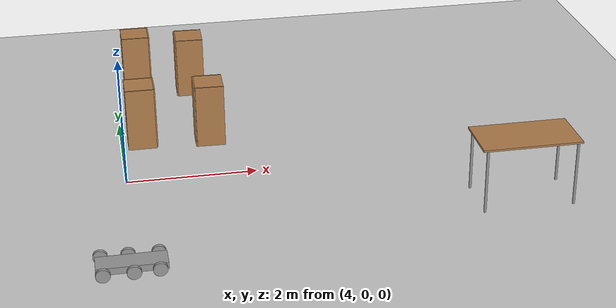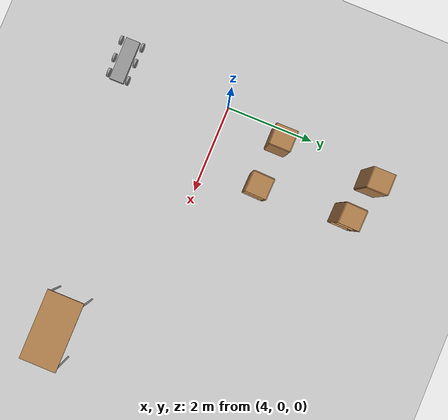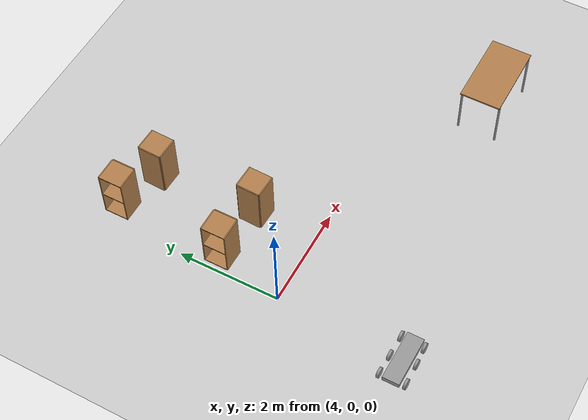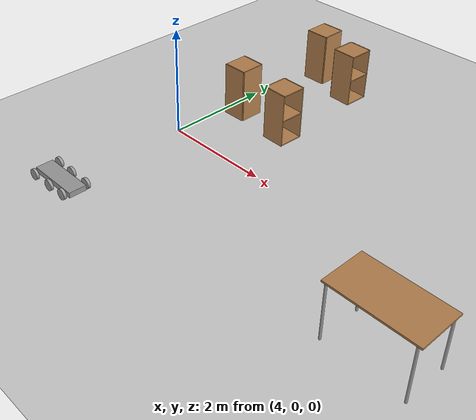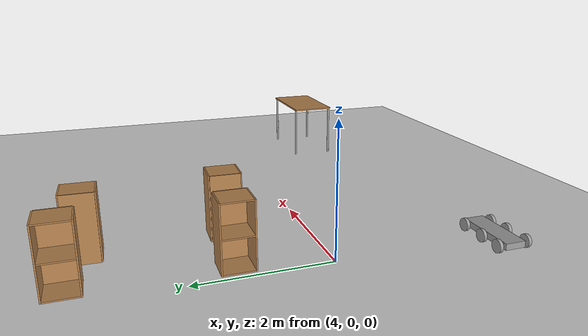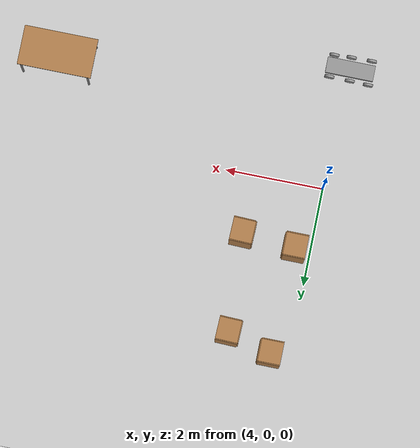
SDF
<sdf version="1.6">
 <world name="default">
  <model name="ground_plane">
   <static>1</static>
   <link name="link">
    <collision name="collision">
     <geometry><plane><normal>0 0 1</normal><size>100 100</size></plane></geometry>
     <surface><friction><ode><mu>100</mu><mu2>50</mu2></ode></friction></surface>
    </collision>
    <visual name="visual">
     <cast_shadows>0</cast_shadows>
     <geometry><plane><normal>0 0 1</normal><size>100 100</size></plane></geometry>
     <material>
      <script><uri>file://media/materials/scripts/gazebo.material</uri><name>Gazebo/Grey</name></script>
     </material>
    </visual>
   </link>
  </model>
  <model name="cabinet_1">
   <static>1</static>
   <link name="cabinet_bottom_plate">
    <inertial>
     <pose>0 0 -1 0 -0 0</pose>
     <inertia><ixx>2.05</ixx><ixy>0</ixy><ixz>0</ixz><iyy>2.05</iyy><iyz>0</iyz><izz>2.05</izz></inertia>
     <mass>25</mass>
    </inertial>
    <collision name="cabinet_bottom_plate_geom">
     <pose>0 0 0.01 0 -0 0</pose>
     <geometry><box><size>0.45 0.45 0.02</size></box></geometry>
    </collision>
    <visual name="cabinet_bottom_plate_geom_visual">
     <pose>0 0 0.01 0 -0 0</pose>
     <geometry><box><size>0.45 0.45 0.02</size></box></geometry>
     <material>
      <script><uri>file://media/materials/scripts/gazebo.material</uri><name>Gazebo/Wood</name></script>
     </material>
    </visual>
    <collision name="cabinet_bottom_plate_geom_cabinet_back_plate">
     <pose>0.235 0 0.51 0 -0 0</pose>
     <geometry><box><size>0.02 0.45 1.02</size></box></geometry>
    </collision>
    <visual name="cabinet_bottom_plate_geom_cabinet_back_plate_visual">
     <pose>0.235 0 0.51 0 -0 0</pose>
     <geometry><box><size>0.02 0.45 1.02</size></box></geometry>
     <material>
      <script><uri>file://media/materials/scripts/gazebo.material</uri><name>Gazebo/Wood</name></script>
     </material>
    </visual>
    <collision name="cabinet_bottom_plate_geom_cabinet_left_plate">
     <pose>0 0.235 0.51 0 -0 0</pose>
     <geometry><box><size>0.45 0.02 1.02</size></box></geometry>
    </collision>
    <visual name="cabinet_bottom_plate_geom_cabinet_left_plate_visual">
     <pose>0 0.235 0.51 0 -0 0</pose>
     <geometry><box><size>0.45 0.02 1.02</size></box></geometry>
     <material>
      <script><uri>file://media/materials/scripts/gazebo.material</uri><name>Gazebo/Wood</name></script>
     </material>
    </visual>
    <collision name="cabinet_bottom_plate_geom_cabinet_middle_plate">
     <pose>0 0 0.51 0 -0 0</pose>
     <geometry><box><size>0.45 0.45 0.02</size></box></geometry>
    </collision>
    <visual name="cabinet_bottom_plate_geom_cabinet_middle_plate_visual">
     <pose>0 0 0.51 0 -0 0</pose>
     <geometry><box><size>0.45 0.45 0.02</size></box></geometry>
     <material>
      <script><uri>file://media/materials/scripts/gazebo.material</uri><name>Gazebo/Wood</name></script>
     </material>
    </visual>
    <collision name="cabinet_bottom_plate_geom_cabinet_right_plate">
     <pose>0 -0.235 0.51 0 -0 0</pose>
     <geometry><box><size>0.45 0.02 1.02</size></box></geometry>
    </collision>
    <visual name="cabinet_bottom_plate_geom_cabinet_right_plate_visual">
     <pose>0 -0.235 0.51 0 -0 0</pose>
     <geometry><box><size>0.45 0.02 1.02</size></box></geometry>
     <material>
      <script><uri>file://media/materials/scripts/gazebo.material</uri><name>Gazebo/Wood</name></script>
     </material>
    </visual>
    <collision name="cabinet_bottom_plate_geom_cabinet_top_plate">
     <pose>0 0 1.01 0 -0 0</pose>
     <geometry><box><size>0.45 0.45 0.02</size></box></geometry>
    </collision>
    <visual name="cabinet_bottom_plate_geom_cabinet_top_plate_visual">
     <pose>0 0 1.01 0 -0 0</pose>
     <geometry><box><size>0.45 0.45 0.02</size></box></geometry>
     <material>
      <script><uri>file://media/materials/scripts/gazebo.material</uri><name>Gazebo/Wood</name></script>
     </material>
    </visual>
   </link>
   <pose>4.39562 3.49519 0 0 -0 0</pose>
  </model>
  <model name="cabinet_2">
   <static>1</static>
   <link name="cabinet_bottom_plate">
    <inertial>
     <pose>0 0 -1 0 -0 0</pose>
     <inertia><ixx>2.05</ixx><ixy>0</ixy><ixz>0</ixz><iyy>2.05</iyy><iyz>0</iyz><izz>2.05</izz></inertia>
     <mass>25</mass>
    </inertial>
    <collision name="cabinet_bottom_plate_geom">
     <pose>0 0 0.01 0 -0 0</pose>
     <geometry><box><size>0.45 0.45 0.02</size></box></geometry>
    </collision>
    <visual name="cabinet_bottom_plate_geom_visual">
     <pose>0 0 0.01 0 -0 0</pose>
     <geometry><box><size>0.45 0.45 0.02</size></box></geometry>
     <material>
      <script><uri>file://media/materials/scripts/gazebo.material</uri><name>Gazebo/Wood</name></script>
     </material>
    </visual>
    <collision name="cabinet_bottom_plate_geom_cabinet_back_plate">
     <pose>0.235 0 0.51 0 -0 0</pose>
     <geometry><box><size>0.02 0.45 1.02</size></box></geometry>
    </collision>
    <visual name="cabinet_bottom_plate_geom_cabinet_back_plate_visual">
     <pose>0.235 0 0.51 0 -0 0</pose>
     <geometry><box><size>0.02 0.45 1.02</size></box></geometry>
     <material>
      <script><uri>file://media/materials/scripts/gazebo.material</uri><name>Gazebo/Wood</name></script>
     </material>
    </visual>
    <collision name="cabinet_bottom_plate_geom_cabinet_left_plate">
     <pose>0 0.235 0.51 0 -0 0</pose>
     <geometry><box><size>0.45 0.02 1.02</size></box></geometry>
    </collision>
    <visual name="cabinet_bottom_plate_geom_cabinet_left_plate_visual">
     <pose>0 0.235 0.51 0 -0 0</pose>
     <geometry><box><size>0.45 0.02 1.02</size></box></geometry>
     <material>
      <script><uri>file://media/materials/scripts/gazebo.material</uri><name>Gazebo/Wood</name></script>
     </material>
    </visual>
    <collision name="cabinet_bottom_plate_geom_cabinet_middle_plate">
     <pose>0 0 0.51 0 -0 0</pose>
     <geometry><box><size>0.45 0.45 0.02</size></box></geometry>
    </collision>
    <visual name="cabinet_bottom_plate_geom_cabinet_middle_plate_visual">
     <pose>0 0 0.51 0 -0 0</pose>
     <geometry><box><size>0.45 0.45 0.02</size></box></geometry>
     <material>
      <script><uri>file://media/materials/scripts/gazebo.material</uri><name>Gazebo/Wood</name></script>
     </material>
    </visual>
    <collision name="cabinet_bottom_plate_geom_cabinet_right_plate">
     <pose>0 -0.235 0.51 0 -0 0</pose>
     <geometry><box><size>0.45 0.02 1.02</size></box></geometry>
    </collision>
    <visual name="cabinet_bottom_plate_geom_cabinet_right_plate_visual">
     <pose>0 -0.235 0.51 0 -0 0</pose>
     <geometry><box><size>0.45 0.02 1.02</size></box></geometry>
     <material>
      <script><uri>file://media/materials/scripts/gazebo.material</uri><name>Gazebo/Wood</name></script>
     </material>
    </visual>
    <collision name="cabinet_bottom_plate_geom_cabinet_top_plate">
     <pose>0 0 1.01 0 -0 0</pose>
     <geometry><box><size>0.45 0.45 0.02</size></box></geometry>
    </collision>
    <visual name="cabinet_bottom_plate_geom_cabinet_top_plate_visual">
     <pose>0 0 1.01 0 -0 0</pose>
     <geometry><box><size>0.45 0.45 0.02</size></box></geometry>
     <material>
      <script><uri>file://media/materials/scripts/gazebo.material</uri><name>Gazebo/Wood</name></script>
     </material>
    </visual>
   </link>
   <pose>4.32245 1.31746 0 0 -0 0</pose>
  </model>
  <model name="cabinet_3">
   <static>1</static>
   <link name="cabinet_bottom_plate">
    <inertial>
     <pose>0 0 -1 0 -0 0</pose>
     <inertia><ixx>2.05</ixx><ixy>0</ixy><ixz>0</ixz><iyy>2.05</iyy><iyz>0</iyz><izz>2.05</izz></inertia>
     <mass>25</mass>
    </inertial>
    <collision name="cabinet_bottom_plate_geom">
     <pose>0 0 0.01 0 -0 0</pose>
     <geometry><box><size>0.45 0.45 0.02</size></box></geometry>
    </collision>
    <visual name="cabinet_bottom_plate_geom_visual">
     <pose>0 0 0.01 0 -0 0</pose>
     <geometry><box><size>0.45 0.45 0.02</size></box></geometry>
     <material>
      <script><uri>file://media/materials/scripts/gazebo.material</uri><name>Gazebo/Wood</name></script>
     </material>
    </visual>
    <collision name="cabinet_bottom_plate_geom_cabinet_back_plate">
     <pose>0.235 0 0.51 0 -0 0</pose>
     <geometry><box><size>0.02 0.45 1.02</size></box></geometry>
    </collision>
    <visual name="cabinet_bottom_plate_geom_cabinet_back_plate_visual">
     <pose>0.235 0 0.51 0 -0 0</pose>
     <geometry><box><size>0.02 0.45 1.02</size></box></geometry>
     <material>
      <script><uri>file://media/materials/scripts/gazebo.material</uri><name>Gazebo/Wood</name></script>
     </material>
    </visual>
    <collision name="cabinet_bottom_plate_geom_cabinet_left_plate">
     <pose>0 0.235 0.51 0 -0 0</pose>
     <geometry><box><size>0.45 0.02 1.02</size></box></geometry>
    </collision>
    <visual name="cabinet_bottom_plate_geom_cabinet_left_plate_visual">
     <pose>0 0.235 0.51 0 -0 0</pose>
     <geometry><box><size>0.45 0.02 1.02</size></box></geometry>
     <material>
      <script><uri>file://media/materials/scripts/gazebo.material</uri><name>Gazebo/Wood</name></script>
     </material>
    </visual>
    <collision name="cabinet_bottom_plate_geom_cabinet_middle_plate">
     <pose>0 0 0.51 0 -0 0</pose>
     <geometry><box><size>0.45 0.45 0.02</size></box></geometry>
    </collision>
    <visual name="cabinet_bottom_plate_geom_cabinet_middle_plate_visual">
     <pose>0 0 0.51 0 -0 0</pose>
     <geometry><box><size>0.45 0.45 0.02</size></box></geometry>
     <material>
      <script><uri>file://media/materials/scripts/gazebo.material</uri><name>Gazebo/Wood</name></script>
     </material>
    </visual>
    <collision name="cabinet_bottom_plate_geom_cabinet_right_plate">
     <pose>0 -0.235 0.51 0 -0 0</pose>
     <geometry><box><size>0.45 0.02 1.02</size></box></geometry>
    </collision>
    <visual name="cabinet_bottom_plate_geom_cabinet_right_plate_visual">
     <pose>0 -0.235 0.51 0 -0 0</pose>
     <geometry><box><size>0.45 0.02 1.02</size></box></geometry>
     <material>
      <script><uri>file://media/materials/scripts/gazebo.material</uri><name>Gazebo/Wood</name></script>
     </material>
    </visual>
    <collision name="cabinet_bottom_plate_geom_cabinet_top_plate">
     <pose>0 0 1.01 0 -0 0</pose>
     <geometry><box><size>0.45 0.45 0.02</size></box></geometry>
    </collision>
    <visual name="cabinet_bottom_plate_geom_cabinet_top_plate_visual">
     <pose>0 0 1.01 0 -0 0</pose>
     <geometry><box><size>0.45 0.45 0.02</size></box></geometry>
     <material>
      <script><uri>file://media/materials/scripts/gazebo.material</uri><name>Gazebo/Wood</name></script>
     </material>
    </visual>
   </link>
   <pose>5.41953 1.23451 0 0 -0 3.1124</pose>
  </model>
  <model name="cabinet_3_clone">
   <static>1</static>
   <link name="cabinet_bottom_plate">
    <inertial>
     <pose>0 0 -1 0 -0 0</pose>
     <inertia><ixx>2.05</ixx><ixy>0</ixy><ixz>0</ixz><iyy>2.05</iyy><iyz>0</iyz><izz>2.05</izz></inertia>
     <mass>25</mass>
    </inertial>
    <collision name="cabinet_bottom_plate_geom">
     <pose>0 0 0.01 0 -0 0</pose>
     <geometry><box><size>0.45 0.45 0.02</size></box></geometry>
    </collision>
    <visual name="cabinet_bottom_plate_geom_visual">
     <pose>0 0 0.01 0 -0 0</pose>
     <geometry><box><size>0.45 0.45 0.02</size></box></geometry>
     <material>
      <script><uri>file://media/materials/scripts/gazebo.material</uri><name>Gazebo/Wood</name></script>
     </material>
    </visual>
    <collision name="cabinet_bottom_plate_geom_cabinet_back_plate">
     <pose>0.235 0 0.51 0 -0 0</pose>
     <geometry><box><size>0.02 0.45 1.02</size></box></geometry>
    </collision>
    <visual name="cabinet_bottom_plate_geom_cabinet_back_plate_visual">
     <pose>0.235 0 0.51 0 -0 0</pose>
     <geometry><box><size>0.02 0.45 1.02</size></box></geometry>
     <material>
      <script><uri>file://media/materials/scripts/gazebo.material</uri><name>Gazebo/Wood</name></script>
     </material>
    </visual>
    <collision name="cabinet_bottom_plate_geom_cabinet_left_plate">
     <pose>0 0.235 0.51 0 -0 0</pose>
     <geometry><box><size>0.45 0.02 1.02</size></box></geometry>
    </collision>
    <visual name="cabinet_bottom_plate_geom_cabinet_left_plate_visual">
     <pose>0 0.235 0.51 0 -0 0</pose>
     <geometry><box><size>0.45 0.02 1.02</size></box></geometry>
     <material>
      <script><uri>file://media/materials/scripts/gazebo.material</uri><name>Gazebo/Wood</name></script>
     </material>
    </visual>
    <collision name="cabinet_bottom_plate_geom_cabinet_middle_plate">
     <pose>0 0 0.51 0 -0 0</pose>
     <geometry><box><size>0.45 0.45 0.02</size></box></geometry>
    </collision>
    <visual name="cabinet_bottom_plate_geom_cabinet_middle_plate_visual">
     <pose>0 0 0.51 0 -0 0</pose>
     <geometry><box><size>0.45 0.45 0.02</size></box></geometry>
     <material>
      <script><uri>file://media/materials/scripts/gazebo.material</uri><name>Gazebo/Wood</name></script>
     </material>
    </visual>
    <collision name="cabinet_bottom_plate_geom_cabinet_right_plate">
     <pose>0 -0.235 0.51 0 -0 0</pose>
     <geometry><box><size>0.45 0.02 1.02</size></box></geometry>
    </collision>
    <visual name="cabinet_bottom_plate_geom_cabinet_right_plate_visual">
     <pose>0 -0.235 0.51 0 -0 0</pose>
     <geometry><box><size>0.45 0.02 1.02</size></box></geometry>
     <material>
      <script><uri>file://media/materials/scripts/gazebo.material</uri><name>Gazebo/Wood</name></script>
     </material>
    </visual>
    <collision name="cabinet_bottom_plate_geom_cabinet_top_plate">
     <pose>0 0 1.01 0 -0 0</pose>
     <geometry><box><size>0.45 0.45 0.02</size></box></geometry>
    </collision>
    <visual name="cabinet_bottom_plate_geom_cabinet_top_plate_visual">
     <pose>0 0 1.01 0 -0 0</pose>
     <geometry><box><size>0.45 0.45 0.02</size></box></geometry>
     <material>
      <script><uri>file://media/materials/scripts/gazebo.material</uri><name>Gazebo/Wood</name></script>
     </material>
    </visual>
   </link>
   <pose>5.30186 3.23149 0 0 -0 3.1124</pose>
  </model>
  <model name="table_1">
   <static>1</static>
   <link name="link">
    <collision name="surface">
     <pose>0 0 1 0 -0 0</pose>
     <geometry><box><size>1.5 0.8 0.03</size></box></geometry>
     <surface><friction><ode><mu>0.6</mu><mu2>0.6</mu2></ode></friction></surface>
    </collision>
    <visual name="visual1">
     <pose>0 0 1 0 -0 0</pose>
     <geometry><box><size>1.5 0.8 0.03</size></box></geometry>
     <material>
      <script><uri>file://media/materials/scripts/gazebo.material</uri><name>Gazebo/Wood</name></script>
     </material>
    </visual>
    <collision name="front_left_leg">
     <pose>0.68 0.38 0.5 0 -0 0</pose>
     <geometry><cylinder><radius>0.02</radius><length>1</length></cylinder></geometry>
    </collision>
    <visual name="front_left_leg">
     <pose>0.68 0.38 0.5 0 -0 0</pose>
     <geometry><cylinder><radius>0.02</radius><length>1</length></cylinder></geometry>
     <material>
      <script><uri>file://media/materials/scripts/gazebo.material</uri><name>Gazebo/Grey</name></script>
     </material>
    </visual>
    <collision name="front_right_leg">
     <pose>0.68 -0.38 0.5 0 -0 0</pose>
     <geometry><cylinder><radius>0.02</radius><length>1</length></cylinder></geometry>
    </collision>
    <visual name="front_right_leg">
     <pose>0.68 -0.38 0.5 0 -0 0</pose>
     <geometry><cylinder><radius>0.02</radius><length>1</length></cylinder></geometry>
     <material>
      <script><uri>file://media/materials/scripts/gazebo.material</uri><name>Gazebo/Grey</name></script>
     </material>
    </visual>
    <collision name="back_right_leg">
     <pose>-0.68 -0.38 0.5 0 -0 0</pose>
     <geometry><cylinder><radius>0.02</radius><length>1</length></cylinder></geometry>
    </collision>
    <visual name="back_right_leg">
     <pose>-0.68 -0.38 0.5 0 -0 0</pose>
     <geometry><cylinder><radius>0.02</radius><length>1</length></cylinder></geometry>
     <material>
      <script><uri>file://media/materials/scripts/gazebo.material</uri><name>Gazebo/Grey</name></script>
     </material>
    </visual>
    <collision name="back_left_leg">
     <pose>-0.68 0.38 0.5 0 -0 0</pose>
     <geometry><cylinder><radius>0.02</radius><length>1</length></cylinder></geometry>
    </collision>
    <visual name="back_left_leg">
     <pose>-0.68 0.38 0.5 0 -0 0</pose>
     <geometry><cylinder><radius>0.02</radius><length>1</length></cylinder></geometry>
     <material>
      <script><uri>file://media/materials/scripts/gazebo.material</uri><name>Gazebo/Grey</name></script>
     </material>
    </visual>
   </link>
   <pose>9.75267 -1.55017 0 0 -0 0</pose>
  </model>
  <model name="robot">
   <link name="link_0">
    <pose>-0 0 0.1 0 -0 0</pose>
    <inertial>
     <mass>4.00076</mass>
     <inertia>
      <ixx>0.0386404</ixx>
      <ixy>0</ixy>
      <ixz>0</ixz>
      <iyy>0.325805</iyy>
      <iyz>0</iyz>
      <izz>0.357777</izz>
     </inertia>
    </inertial>
    <visual name="visual">
     <geometry><box><size>0.983477 0.325421 0.1</size></box></geometry>
     <material>
      <lighting>1</lighting>
      <script><uri>file://media/materials/scripts/gazebo.material</uri><name>Gazebo/Grey</name></script>
      <shader type="pixel"><normal_map>__default__</normal_map></shader>
      <ambient>0.3 0.3 0.3 1</ambient>
      <diffuse>0.7 0.7 0.7 1</diffuse>
      <specular>0.01 0.01 0.01 1</specular>
      <emissive>0 0 0 1</emissive>
     </material>
    </visual>
    <collision name="collision">
     <geometry><box><size>0.983477 0.325421 0.1</size></box></geometry>
     <surface>
      <friction>
       <ode><mu>1</mu><mu2>1</mu2><fdir1>0 0 0</fdir1><slip1>0</slip1><slip2>0</slip2></ode>
       <torsional>
        <coefficient>1</coefficient>
        <patch_radius>0</patch_radius>
        <surface_radius>0</surface_radius>
        <use_patch_radius>1</use_patch_radius>
        <ode><slip>0</slip></ode>
       </torsional>
      </friction>
      <bounce><restitution_coefficient>0</restitution_coefficient><threshold>1e+06</threshold></bounce>
      <contact>
       <collide_without_contact>0</collide_without_contact>
       <collide_without_contact_bitmask>1</collide_without_contact_bitmask>
       <collide_bitmask>1</collide_bitmask>
       <ode>
        <soft_cfm>0</soft_cfm>
        <soft_erp>0.2</soft_erp>
        <kp>1e+13</kp>
        <kd>1</kd>
        <max_vel>0.01</max_vel>
        <min_depth>0</min_depth>
       </ode>
       <bullet>
        <split_impulse>1</split_impulse>
        <split_impulse_penetration_threshold>-0.01</split_impulse_penetration_threshold>
        <soft_cfm>0</soft_cfm>
        <soft_erp>0.2</soft_erp>
        <kp>1e+13</kp>
        <kd>1</kd>
       </bullet>
      </contact>
     </surface>
    </collision>
   </link>
   <link name="link_1">
    <pose>0.387288 0.231079 0.10001 -0.000572 1.5707 1.57013</pose>
    <inertial>
     <mass>1</mass>
     <inertia><ixx>0.145833</ixx><ixy>0</ixy><ixz>0</ixz><iyy>0.145833</iyy><iyz>0</iyz><izz>0.125</izz></inertia>
    </inertial>
    <visual name="visual">
     <geometry><cylinder><radius>0.1</radius><length>0.05</length></cylinder></geometry>
     <material>
      <lighting>1</lighting>
      <script><uri>file://media/materials/scripts/gazebo.material</uri><name>Gazebo/Grey</name></script>
      <shader type="pixel"><normal_map>__default__</normal_map></shader>
      <ambient>0.3 0.3 0.3 1</ambient>
      <diffuse>0.7 0.7 0.7 1</diffuse>
      <specular>0.01 0.01 0.01 1</specular>
      <emissive>0 0 0 1</emissive>
     </material>
    </visual>
    <collision name="collision">
     <geometry><cylinder><radius>0.1</radius><length>0.05</length></cylinder></geometry>
     <surface>
      <friction>
       <ode><mu>1</mu><mu2>1</mu2><fdir1>0 0 0</fdir1><slip1>0</slip1><slip2>0</slip2></ode>
       <torsional>
        <coefficient>1</coefficient>
        <patch_radius>0</patch_radius>
        <surface_radius>0</surface_radius>
        <use_patch_radius>1</use_patch_radius>
        <ode><slip>0</slip></ode>
       </torsional>
      </friction>
      <bounce><restitution_coefficient>0</restitution_coefficient><threshold>1e+06</threshold></bounce>
      <contact>
       <collide_without_contact>0</collide_without_contact>
       <collide_without_contact_bitmask>1</collide_without_contact_bitmask>
       <collide_bitmask>1</collide_bitmask>
       <ode>
        <soft_cfm>0</soft_cfm>
        <soft_erp>0.2</soft_erp>
        <kp>1e+13</kp>
        <kd>1</kd>
        <max_vel>0.01</max_vel>
        <min_depth>0</min_depth>
       </ode>
       <bullet>
        <split_impulse>1</split_impulse>
        <split_impulse_penetration_threshold>-0.01</split_impulse_penetration_threshold>
        <soft_cfm>0</soft_cfm>
        <soft_erp>0.2</soft_erp>
        <kp>1e+13</kp>
        <kd>1</kd>
       </bullet>
      </contact>
     </surface>
    </collision>
   </link>
   <link name="link_1_clone">
    <pose>-0.034946 0.236686 0.10001 -0.000572 1.5707 1.57013</pose>
    <inertial>
     <mass>1</mass>
     <inertia><ixx>0.145833</ixx><ixy>0</ixy><ixz>0</ixz><iyy>0.145833</iyy><iyz>0</iyz><izz>0.125</izz></inertia>
    </inertial>
    <visual name="visual">
     <geometry><cylinder><radius>0.1</radius><length>0.05</length></cylinder></geometry>
     <material>
      <lighting>1</lighting>
      <script><uri>file://media/materials/scripts/gazebo.material</uri><name>Gazebo/Grey</name></script>
      <shader type="pixel"><normal_map>__default__</normal_map></shader>
      <ambient>0.3 0.3 0.3 1</ambient>
      <diffuse>0.7 0.7 0.7 1</diffuse>
      <specular>0.01 0.01 0.01 1</specular>
      <emissive>0 0 0 1</emissive>
     </material>
    </visual>
    <collision name="collision">
     <geometry><cylinder><radius>0.1</radius><length>0.05</length></cylinder></geometry>
     <surface>
      <friction>
       <ode><mu>1</mu><mu2>1</mu2><fdir1>0 0 0</fdir1><slip1>0</slip1><slip2>0</slip2></ode>
       <torsional>
        <coefficient>1</coefficient>
        <patch_radius>0</patch_radius>
        <surface_radius>0</surface_radius>
        <use_patch_radius>1</use_patch_radius>
        <ode><slip>0</slip></ode>
       </torsional>
      </friction>
      <bounce><restitution_coefficient>0</restitution_coefficient><threshold>1e+06</threshold></bounce>
      <contact>
       <collide_without_contact>0</collide_without_contact>
       <collide_without_contact_bitmask>1</collide_without_contact_bitmask>
       <collide_bitmask>1</collide_bitmask>
       <ode>
        <soft_cfm>0</soft_cfm>
        <soft_erp>0.2</soft_erp>
        <kp>1e+13</kp>
        <kd>1</kd>
        <max_vel>0.01</max_vel>
        <min_depth>0</min_depth>
       </ode>
       <bullet>
        <split_impulse>1</split_impulse>
        <split_impulse_penetration_threshold>-0.01</split_impulse_penetration_threshold>
        <soft_cfm>0</soft_cfm>
        <soft_erp>0.2</soft_erp>
        <kp>1e+13</kp>
        <kd>1</kd>
       </bullet>
      </contact>
     </surface>
    </collision>
   </link>
   <link name="link_1_clone_0">
    <pose>-0.414236 0.246471 0.10001 -0.000572 1.5707 1.57013</pose>
    <inertial>
     <mass>1</mass>
     <inertia><ixx>0.145833</ixx><ixy>0</ixy><ixz>0</ixz><iyy>0.145833</iyy><iyz>0</iyz><izz>0.125</izz></inertia>
    </inertial>
    <visual name="visual">
     <geometry><cylinder><radius>0.1</radius><length>0.05</length></cylinder></geometry>
     <material>
      <lighting>1</lighting>
      <script><uri>file://media/materials/scripts/gazebo.material</uri><name>Gazebo/Grey</name></script>
      <shader type="pixel"><normal_map>__default__</normal_map></shader>
      <ambient>0.3 0.3 0.3 1</ambient>
      <diffuse>0.7 0.7 0.7 1</diffuse>
      <specular>0.01 0.01 0.01 1</specular>
      <emissive>0 0 0 1</emissive>
     </material>
    </visual>
    <collision name="collision">
     <geometry><cylinder><radius>0.1</radius><length>0.05</length></cylinder></geometry>
     <surface>
      <friction>
       <ode><mu>1</mu><mu2>1</mu2><fdir1>0 0 0</fdir1><slip1>0</slip1><slip2>0</slip2></ode>
       <torsional>
        <coefficient>1</coefficient>
        <patch_radius>0</patch_radius>
        <surface_radius>0</surface_radius>
        <use_patch_radius>1</use_patch_radius>
        <ode><slip>0</slip></ode>
       </torsional>
      </friction>
      <bounce><restitution_coefficient>0</restitution_coefficient><threshold>1e+06</threshold></bounce>
      <contact>
       <collide_without_contact>0</collide_without_contact>
       <collide_without_contact_bitmask>1</collide_without_contact_bitmask>
       <collide_bitmask>1</collide_bitmask>
       <ode>
        <soft_cfm>0</soft_cfm>
        <soft_erp>0.2</soft_erp>
        <kp>1e+13</kp>
        <kd>1</kd>
        <max_vel>0.01</max_vel>
        <min_depth>0</min_depth>
       </ode>
       <bullet>
        <split_impulse>1</split_impulse>
        <split_impulse_penetration_threshold>-0.01</split_impulse_penetration_threshold>
        <soft_cfm>0</soft_cfm>
        <soft_erp>0.2</soft_erp>
        <kp>1e+13</kp>
        <kd>1</kd>
       </bullet>
      </contact>
     </surface>
    </collision>
   </link>
   <link name="link_1_clone_1">
    <pose>0.018916 -0.242775 0.10001 -0.000572 1.5707 1.57013</pose>
    <inertial>
     <mass>1</mass>
     <inertia><ixx>0.145833</ixx><ixy>0</ixy><ixz>0</ixz><iyy>0.145833</iyy><iyz>0</iyz><izz>0.125</izz></inertia>
    </inertial>
    <visual name="visual">
     <geometry><cylinder><radius>0.1</radius><length>0.05</length></cylinder></geometry>
     <material>
      <lighting>1</lighting>
      <script><uri>file://media/materials/scripts/gazebo.material</uri><name>Gazebo/Grey</name></script>
      <shader type="pixel"><normal_map>__default__</normal_map></shader>
      <ambient>0.3 0.3 0.3 1</ambient>
      <diffuse>0.7 0.7 0.7 1</diffuse>
      <specular>0.01 0.01 0.01 1</specular>
      <emissive>0 0 0 1</emissive>
     </material>
    </visual>
    <collision name="collision">
     <geometry><cylinder><radius>0.1</radius><length>0.05</length></cylinder></geometry>
     <surface>
      <friction>
       <ode><mu>1</mu><mu2>1</mu2><fdir1>0 0 0</fdir1><slip1>0</slip1><slip2>0</slip2></ode>
       <torsional>
        <coefficient>1</coefficient>
        <patch_radius>0</patch_radius>
        <surface_radius>0</surface_radius>
        <use_patch_radius>1</use_patch_radius>
        <ode><slip>0</slip></ode>
       </torsional>
      </friction>
      <bounce><restitution_coefficient>0</restitution_coefficient><threshold>1e+06</threshold></bounce>
      <contact>
       <collide_without_contact>0</collide_without_contact>
       <collide_without_contact_bitmask>1</collide_without_contact_bitmask>
       <collide_bitmask>1</collide_bitmask>
       <ode>
        <soft_cfm>0</soft_cfm>
        <soft_erp>0.2</soft_erp>
        <kp>1e+13</kp>
        <kd>1</kd>
        <max_vel>0.01</max_vel>
        <min_depth>0</min_depth>
       </ode>
       <bullet>
        <split_impulse>1</split_impulse>
        <split_impulse_penetration_threshold>-0.01</split_impulse_penetration_threshold>
        <soft_cfm>0</soft_cfm>
        <soft_erp>0.2</soft_erp>
        <kp>1e+13</kp>
        <kd>1</kd>
       </bullet>
      </contact>
     </surface>
    </collision>
   </link>
   <link name="link_1_clone_2">
    <pose>-0.397128 -0.249762 0.10001 -0.000572 1.5707 1.57013</pose>
    <inertial>
     <mass>1</mass>
     <inertia><ixx>0.145833</ixx><ixy>0</ixy><ixz>0</ixz><iyy>0.145833</iyy><iyz>0</iyz><izz>0.125</izz></inertia>
    </inertial>
    <visual name="visual">
     <geometry><cylinder><radius>0.1</radius><length>0.05</length></cylinder></geometry>
     <material>
      <lighting>1</lighting>
      <script><uri>file://media/materials/scripts/gazebo.material</uri><name>Gazebo/Grey</name></script>
      <shader type="pixel"><normal_map>__default__</normal_map></shader>
      <ambient>0.3 0.3 0.3 1</ambient>
      <diffuse>0.7 0.7 0.7 1</diffuse>
      <specular>0.01 0.01 0.01 1</specular>
      <emissive>0 0 0 1</emissive>
     </material>
    </visual>
    <collision name="collision">
     <geometry><cylinder><radius>0.1</radius><length>0.05</length></cylinder></geometry>
     <surface>
      <friction>
       <ode><mu>1</mu><mu2>1</mu2><fdir1>0 0 0</fdir1><slip1>0</slip1><slip2>0</slip2></ode>
       <torsional>
        <coefficient>1</coefficient>
        <patch_radius>0</patch_radius>
        <surface_radius>0</surface_radius>
        <use_patch_radius>1</use_patch_radius>
        <ode><slip>0</slip></ode>
       </torsional>
      </friction>
      <bounce><restitution_coefficient>0</restitution_coefficient><threshold>1e+06</threshold></bounce>
      <contact>
       <collide_without_contact>0</collide_without_contact>
       <collide_without_contact_bitmask>1</collide_without_contact_bitmask>
       <collide_bitmask>1</collide_bitmask>
       <ode>
        <soft_cfm>0</soft_cfm>
        <soft_erp>0.2</soft_erp>
        <kp>1e+13</kp>
        <kd>1</kd>
        <max_vel>0.01</max_vel>
        <min_depth>0</min_depth>
       </ode>
       <bullet>
        <split_impulse>1</split_impulse>
        <split_impulse_penetration_threshold>-0.01</split_impulse_penetration_threshold>
        <soft_cfm>0</soft_cfm>
        <soft_erp>0.2</soft_erp>
        <kp>1e+13</kp>
        <kd>1</kd>
       </bullet>
      </contact>
     </surface>
    </collision>
   </link>
   <link name="link_2">
    <pose>0.370918 -0.225117 0.099991 4.8e-05 1.5707 1.57075</pose>
    <inertial>
     <mass>1</mass>
     <inertia><ixx>0.145833</ixx><ixy>0</ixy><ixz>0</ixz><iyy>0.145833</iyy><iyz>0</iyz><izz>0.125</izz></inertia>
    </inertial>
    <visual name="visual">
     <geometry><cylinder><radius>0.1</radius><length>0.05</length></cylinder></geometry>
     <material>
      <lighting>1</lighting>
      <script><uri>file://media/materials/scripts/gazebo.material</uri><name>Gazebo/Grey</name></script>
      <shader type="pixel"><normal_map>__default__</normal_map></shader>
      <ambient>0.3 0.3 0.3 1</ambient>
      <diffuse>0.7 0.7 0.7 1</diffuse>
      <specular>0.01 0.01 0.01 1</specular>
      <emissive>0 0 0 1</emissive>
     </material>
    </visual>
    <collision name="collision">
     <geometry><cylinder><radius>0.1</radius><length>0.05</length></cylinder></geometry>
     <surface>
      <friction>
       <ode><mu>1</mu><mu2>1</mu2><fdir1>0 0 0</fdir1><slip1>0</slip1><slip2>0</slip2></ode>
       <torsional>
        <coefficient>1</coefficient>
        <patch_radius>0</patch_radius>
        <surface_radius>0</surface_radius>
        <use_patch_radius>1</use_patch_radius>
        <ode><slip>0</slip></ode>
       </torsional>
      </friction>
      <bounce><restitution_coefficient>0</restitution_coefficient><threshold>1e+06</threshold></bounce>
      <contact>
       <collide_without_contact>0</collide_without_contact>
       <collide_without_contact_bitmask>1</collide_without_contact_bitmask>
       <collide_bitmask>1</collide_bitmask>
       <ode>
        <soft_cfm>0</soft_cfm>
        <soft_erp>0.2</soft_erp>
        <kp>1e+13</kp>
        <kd>1</kd>
        <max_vel>0.01</max_vel>
        <min_depth>0</min_depth>
       </ode>
       <bullet>
        <split_impulse>1</split_impulse>
        <split_impulse_penetration_threshold>-0.01</split_impulse_penetration_threshold>
        <soft_cfm>0</soft_cfm>
        <soft_erp>0.2</soft_erp>
        <kp>1e+13</kp>
        <kd>1</kd>
       </bullet>
      </contact>
     </surface>
    </collision>
   </link>
   <joint name="link_0_JOINT_0" type="revolute">
    <parent>link_0</parent>
    <child>link_2</child>
    <pose>0 0 -0.03 0 -0 0</pose>
    <axis>
     <xyz>0 1 0</xyz>
     <use_parent_model_frame>0</use_parent_model_frame>
     <limit>
      <lower>-1.79769e+308</lower>
      <upper>1.79769e+308</upper>
      <effort>-1</effort>
      <velocity>-1</velocity>
     </limit>
     <dynamics>
      <spring_reference>0</spring_reference>
      <spring_stiffness>0</spring_stiffness>
      <damping>0</damping>
     </dynamics>
    </axis>
    <physics>
     <ode><limit><cfm>0</cfm><erp>0.2</erp></limit><suspension><cfm>0</cfm><erp>0.2</erp></suspension></ode>
    </physics>
   </joint>
   <joint name="link_0_JOINT_1" type="revolute">
    <parent>link_0</parent>
    <child>link_1_clone_1</child>
    <pose>0 0 -0.03 0 -0 0</pose>
    <axis>
     <xyz>0 1 0</xyz>
     <use_parent_model_frame>0</use_parent_model_frame>
     <limit>
      <lower>-1.79769e+308</lower>
      <upper>1.79769e+308</upper>
      <effort>-1</effort>
      <velocity>-1</velocity>
     </limit>
     <dynamics>
      <spring_reference>0</spring_reference>
      <spring_stiffness>0</spring_stiffness>
      <damping>0</damping>
     </dynamics>
    </axis>
    <physics>
     <ode><limit><cfm>0</cfm><erp>0.2</erp></limit><suspension><cfm>0</cfm><erp>0.2</erp></suspension></ode>
    </physics>
   </joint>
   <joint name="link_0_JOINT_2" type="revolute">
    <parent>link_0</parent>
    <child>link_1_clone_2</child>
    <pose>0 0 -0.03 0 -0 0</pose>
    <axis>
     <xyz>0 1 0</xyz>
     <use_parent_model_frame>0</use_parent_model_frame>
     <limit>
      <lower>-1.79769e+308</lower>
      <upper>1.79769e+308</upper>
      <effort>-1</effort>
      <velocity>-1</velocity>
     </limit>
     <dynamics>
      <spring_reference>0</spring_reference>
      <spring_stiffness>0</spring_stiffness>
      <damping>0</damping>
     </dynamics>
    </axis>
    <physics>
     <ode><limit><cfm>0</cfm><erp>0.2</erp></limit><suspension><cfm>0</cfm><erp>0.2</erp></suspension></ode>
    </physics>
   </joint>
   <joint name="link_0_JOINT_3" type="revolute">
    <parent>link_0</parent>
    <child>link_1</child>
    <pose>0 0 0.03 0 -0 0</pose>
    <axis>
     <xyz>0 1 0</xyz>
     <use_parent_model_frame>0</use_parent_model_frame>
     <limit>
      <lower>-1.79769e+308</lower>
      <upper>1.79769e+308</upper>
      <effort>-1</effort>
      <velocity>-1</velocity>
     </limit>
     <dynamics>
      <spring_reference>0</spring_reference>
      <spring_stiffness>0</spring_stiffness>
      <damping>0</damping>
      <friction>0</friction>
     </dynamics>
    </axis>
    <physics>
     <ode><limit><cfm>0</cfm><erp>0.2</erp></limit><suspension><cfm>0</cfm><erp>0.2</erp></suspension></ode>
    </physics>
   </joint>
   <joint name="link_0_JOINT_4" type="revolute">
    <parent>link_0</parent>
    <child>link_1_clone</child>
    <pose>0 0 0.03 0 -0 0</pose>
    <axis>
     <xyz>0 1 0</xyz>
     <use_parent_model_frame>0</use_parent_model_frame>
     <limit>
      <lower>-1.79769e+308</lower>
      <upper>1.79769e+308</upper>
      <effort>-1</effort>
      <velocity>-1</velocity>
     </limit>
     <dynamics>
      <spring_reference>0</spring_reference>
      <spring_stiffness>0</spring_stiffness>
      <damping>0</damping>
      <friction>0</friction>
     </dynamics>
    </axis>
    <physics>
     <ode><limit><cfm>0</cfm><erp>0.2</erp></limit><suspension><cfm>0</cfm><erp>0.2</erp></suspension></ode>
    </physics>
   </joint>
   <joint name="link_0_JOINT_5" type="revolute">
    <parent>link_0</parent>
    <child>link_1_clone_0</child>
    <pose>0 0 0.03 0 -0 0</pose>
    <axis>
     <xyz>0 1 0</xyz>
     <use_parent_model_frame>0</use_parent_model_frame>
     <limit>
      <lower>-1.79769e+308</lower>
      <upper>1.79769e+308</upper>
      <effort>-1</effort>
      <velocity>-1</velocity>
     </limit>
     <dynamics>
      <spring_reference>0</spring_reference>
      <spring_stiffness>0</spring_stiffness>
      <damping>0</damping>
     </dynamics>
    </axis>
    <physics>
     <ode><limit><cfm>0</cfm><erp>0.2</erp></limit><suspension><cfm>0</cfm><erp>0.2</erp></suspension></ode>
    </physics>
   </joint>
   <static>1</static>
   <pose>3.9249 -2.50843 0 0 -0 0</pose>
  </model>
 </world>
</sdf>
